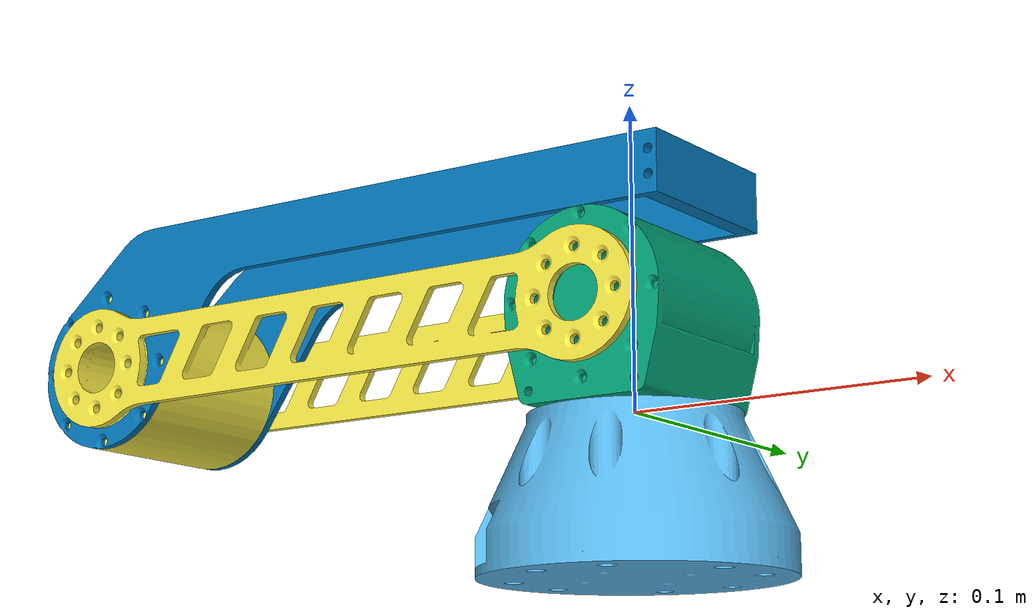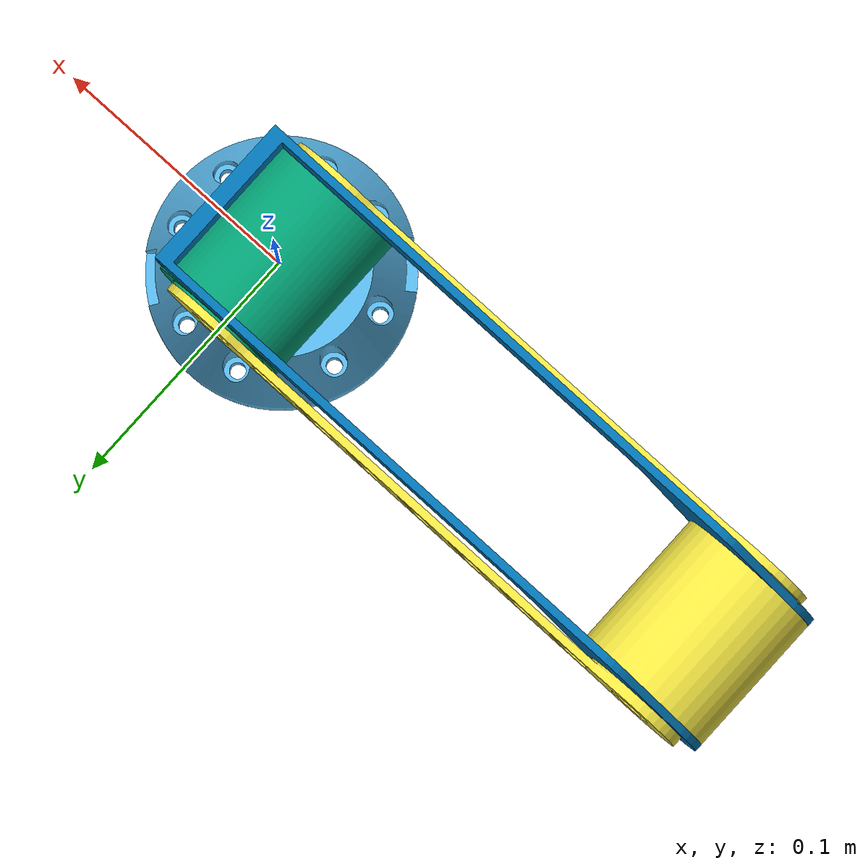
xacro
<?xml version="1.0"?>
<robot xmlns:xacro="http://www.ros.org/wiki/xacro" name="swing_boy">

    <xacro:arg name="use_simulation" default="true"/>
    <xacro:if value="$(arg use_simulation)">
        <gazebo>
            <plugin name="arm_ros_control" filename="libarm_robot_hw_sim.so">
                <robotNamespace>/</robotNamespace>
                <robotSimType>arm_gazebo/ArmRobotHWSim</robotSimType>
            </plugin>
        </gazebo>
    </xacro:if>

    <xacro:include filename="$(find swing_boy)/urdf/arm.urdf.xacro"/>
    <xacro:arm/>
    <xacro:include filename="$(find swing_boy)/urdf/arm_transmission.xacro"/>
    <xacro:arm_transmission/>
</robot>

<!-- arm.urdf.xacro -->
<robot xmlns:xacro="http://www.ros.org/wiki/xacro" name="arm">
    <xacro:macro name="arm">
        <link name="world"></link>
        <link name="base_link">
            <visual>
                <origin xyz="0 0 0" rpy="0 0 0"/>
                <geometry>
                    <mesh filename="package://swing_boy/meshes/base.stl" scale="0.001 0.001 0.001"/>
                </geometry>
            </visual>
            <collision>
                <origin xyz="0. 0. 0." rpy="0 0 0"/>
                <geometry>
                    <mesh filename="package://swing_boy/meshes/base.stl" scale="0.001 0.001 0.001"/>
                </geometry>
            </collision>
            <inertial>
                <mass value="0.476537"/>
                <origin xyz="-0.000051 -0.000125 -0.030648"/>
                <inertia ixx="3.101e-4" ixy="9.215839e-6" ixz="5.46844e-8" iyy="3.100e-4"
                         iyz="-1.59465e-7"
                         izz="4.105e-4"/>
            </inertial>
        </link>
        <joint name="fixed_base" type="fixed">
            <parent link="world"/>
            <child link="base_link"/>
            <origin xyz="0 0 0" rpy="0 0 0"/>
        </joint>
        <link name="link1">
            <visual>
                <origin xyz="0 0 0.032" rpy="0 0 0"/>
                <geometry>
                    <mesh filename="package://swing_boy/meshes/link1.stl" scale="0.001 0.001 0.001"/>
                </geometry>
            </visual>
            <collision>
                <origin xyz="0. 0. 0." rpy="0 0 0"/>
                <geometry>
                    <mesh filename="package://swing_boy/meshes/link1.stl" scale="0.001 0.001 0.001"/>
                </geometry>
            </collision>
            <inertial>
                <mass value="0.499496"/>
                <origin xyz="-0.000017 -0.005388 0.030434"/>
                <inertia ixx="3.043e-4" ixy="7.99033e-7" ixz="1.09468e-7" iyy="2.716e-4"
                         iyz="4.675523e-6"
                         izz="2.922e-4"/>
            </inertial>
        </link>
        <link name="link2">
            <visual>
                <origin xyz="-0.2 0 0" rpy="0 0 0"/>
                <geometry>
                    <mesh filename="package://swing_boy/meshes/link2.stl" scale="0.001 0.001 0.001"/>
                </geometry>
            </visual>
            <collision>
                <origin xyz="-0.2 0. 0." rpy="0 0 0"/>
                <geometry>
                    <mesh filename="package://swing_boy/meshes/link2.stl" scale="0.001 0.001 0.001"/>
                </geometry>
            </collision>
            <inertial>
                <mass value="0.505361"/>
                <origin xyz="-0.191239 -0.005296 0.000049"/>
                <inertia ixx="3.194e-4" ixy="-2.320655e-5" ixz="1.5031e-7" iyy="8.869e-4"
                         iyz="3.28381e-7"
                         izz="9.599e-4"/>
            </inertial>
        </link>
        <link name="link3">
            <visual>
                <origin xyz="0 0 0" rpy="0 0 0"/>
                <geometry>
                    <mesh filename="package://swing_boy/meshes/link3.stl" scale="0.001 0.001 0.001"/>
                </geometry>
            </visual>
            <collision>
                <origin xyz="0. 0. 0." rpy="0 0 0"/>
                <geometry>
                    <mesh filename="package://swing_boy/meshes/link3.stl" scale="0.001 0.001 0.001"/>
                </geometry>
            </collision>
            <inertial>
                <mass value="0.058973"/>
                <origin xyz="0.101968 -0.000085 0.03048"/>
                <inertia ixx="6.4054865e-5" ixy="-5.11151e-7" ixz="-4.1292165e-5"
                         iyy="3.979e-4" iyz="-1.53213e-7"
                         izz="4.306e-4"/>
            </inertial>
        </link>
        <joint name="joint1" type="revolute">
            <parent link="base_link"/>
            <child link="link1"/>
            <origin xyz="0 0 0." rpy="0 0 0"/>
            <axis xyz="0 0 1"/>
            <limit lower="-3.14" upper="3.14" velocity="1" effort="8"/>
        </joint>
        <joint name="joint2" type="revolute">
            <parent link="link1"/>
            <child link="link2"/>
            <origin xyz="0. 0. 0.032" rpy="0 0 0"/>
            <axis xyz="0 1 0"/>
            <limit lower="-3.14" upper="3.14" velocity="1" effort="8"/>
        </joint>
        <joint name="joint3" type="revolute">
            <parent link="link2"/>
            <child link="link3"/>
            <origin xyz="-0.2 0 0" rpy="0 0 0"/>
            <axis xyz="0 1 0"/>
            <limit lower="-3.14" upper="3.14" velocity="1" effort="8"/>
        </joint>

        <link name="EE"/>
        <joint name="EE_fixed" type="fixed">
            <parent link="link3"/>
            <child link="EE"/>
            <origin xyz="0.2 0 0.035" rpy="0 0 0"/>
        </joint>
    </xacro:macro>
</robot>
